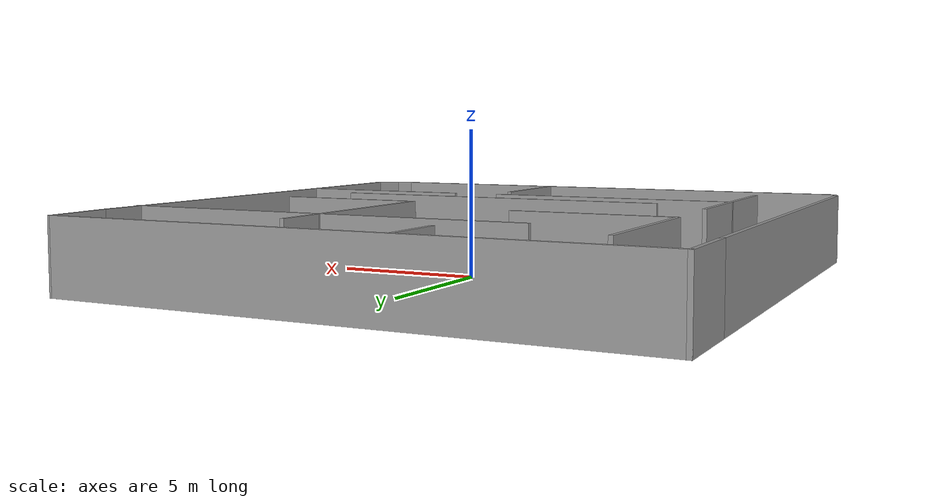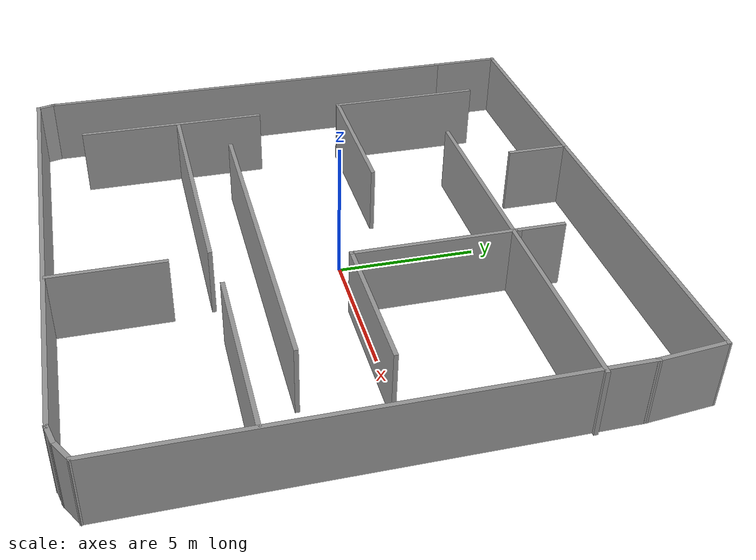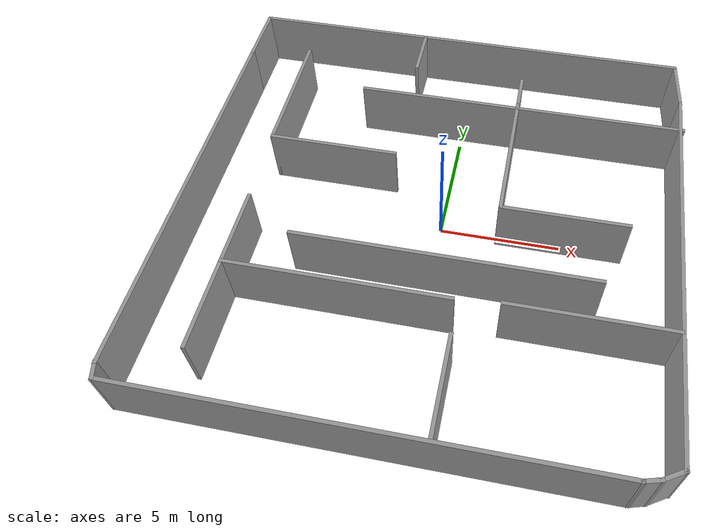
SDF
<?xml version='1.0'?>
<sdf version='1.7'>
  <model name='RightRoom'>
    <pose>-0.390822 -0.305689 0 0 -0 0</pose>
    <link name='Wall_11'>
      <collision name='Wall_11_Collision'>
        <geometry>
          <box>
            <size>2.75 0.15 2.5</size>
          </box>
        </geometry>
        <pose>0 0 1.25 0 -0 0</pose>
      </collision>
      <visual name='Wall_11_Visual'>
        <pose>0 0 1.25 0 -0 0</pose>
        <geometry>
          <box>
            <size>2.75 0.15 2.5</size>
          </box>
        </geometry>
        <material>
          <script>
            <uri>file://media/materials/scripts/gazebo.material</uri>
            <name>Gazebo/Grey</name>
          </script>
          <ambient>1 1 1 1</ambient>
        </material>
        <meta>
          <layer>0</layer>
        </meta>
      </visual>
      <pose>-9.95326 8.46986 0 0 -0 1.5708</pose>
    </link>
    <link name='Wall_12'>
      <collision name='Wall_12_Collision'>
        <geometry>
          <box>
            <size>19.75 0.15 2.5</size>
          </box>
        </geometry>
        <pose>0 0 1.25 0 -0 0</pose>
      </collision>
      <visual name='Wall_12_Visual'>
        <pose>0 0 1.25 0 -0 0</pose>
        <geometry>
          <box>
            <size>19.75 0.15 2.5</size>
          </box>
        </geometry>
        <material>
          <script>
            <uri>file://media/materials/scripts/gazebo.material</uri>
            <name>Gazebo/Grey</name>
          </script>
          <ambient>1 1 1 1</ambient>
        </material>
        <meta>
          <layer>0</layer>
        </meta>
      </visual>
      <pose>-0.15326 9.76986 0 0 -0 0</pose>
    </link>
    <link name='Wall_13'>
      <collision name='Wall_13_Collision'>
        <geometry>
          <box>
            <size>2.50963 0.15 2.5</size>
          </box>
        </geometry>
        <pose>0 0 1.25 0 -0 0</pose>
      </collision>
      <visual name='Wall_13_Visual'>
        <pose>0 0 1.25 0 -0 0</pose>
        <geometry>
          <box>
            <size>2.50963 0.15 2.5</size>
          </box>
        </geometry>
        <material>
          <script>
            <uri>file://media/materials/scripts/gazebo.material</uri>
            <name>Gazebo/Grey</name>
          </script>
          <ambient>1 1 1 1</ambient>
        </material>
        <meta>
          <layer>0</layer>
        </meta>
      </visual>
      <pose>9.75723 8.59523 0 0 -0 -1.47701</pose>
    </link>
    <link name='Wall_15'>
      <collision name='Wall_15_Collision'>
        <geometry>
          <box>
            <size>5.75 0.15 2.5</size>
          </box>
        </geometry>
        <pose>0 0 1.25 0 -0 0</pose>
      </collision>
      <visual name='Wall_15_Visual'>
        <pose>0 0 1.25 0 -0 0</pose>
        <geometry>
          <box>
            <size>5.75 0.15 2.5</size>
          </box>
        </geometry>
        <material>
          <script>
            <uri>file://media/materials/scripts/gazebo.material</uri>
            <name>Gazebo/Grey</name>
          </script>
          <ambient>1 1 1 1</ambient>
        </material>
        <meta>
          <layer>0</layer>
        </meta>
      </visual>
      <pose>-7.32191 4.93089 0 0 -0 -1.5708</pose>
    </link>
    <link name='Wall_16'>
      <collision name='Wall_16_Collision'>
        <geometry>
          <box>
            <size>5.5 0.15 2.5</size>
          </box>
        </geometry>
        <pose>0 0 1.25 0 -0 0</pose>
      </collision>
      <visual name='Wall_16_Visual'>
        <pose>0 0 1.25 0 -0 0</pose>
        <geometry>
          <box>
            <size>5.5 0.15 2.5</size>
          </box>
        </geometry>
        <material>
          <script>
            <uri>file://media/materials/scripts/gazebo.material</uri>
            <name>Gazebo/Grey</name>
          </script>
          <ambient>1 1 1 1</ambient>
        </material>
        <meta>
          <layer>0</layer>
        </meta>
      </visual>
      <pose>-4.64691 2.13089 0 0 -0 0</pose>
    </link>
    <link name='Wall_18'>
      <collision name='Wall_18_Collision'>
        <geometry>
          <box>
            <size>7 0.15 2.5</size>
          </box>
        </geometry>
        <pose>0 0 1.25 0 -0 0</pose>
      </collision>
      <visual name='Wall_18_Visual'>
        <pose>0 0 1.25 0 -0 0</pose>
        <geometry>
          <box>
            <size>7 0.15 2.5</size>
          </box>
        </geometry>
        <material>
          <script>
            <uri>file://media/materials/scripts/gazebo.material</uri>
            <name>Gazebo/Grey</name>
          </script>
          <ambient>1 1 1 1</ambient>
        </material>
        <meta>
          <layer>0</layer>
        </meta>
      </visual>
      <pose>-7.21551 -4.63178 0 0 -0 -1.5708</pose>
    </link>
    <link name='Wall_20'>
      <collision name='Wall_20_Collision'>
        <geometry>
          <box>
            <size>9 0.15 2.5</size>
          </box>
        </geometry>
        <pose>0 0 1.25 0 -0 0</pose>
      </collision>
      <visual name='Wall_20_Visual'>
        <pose>0 0 1.25 0 -0 0</pose>
        <geometry>
          <box>
            <size>9 0.15 2.5</size>
          </box>
        </geometry>
        <material>
          <script>
            <uri>file://media/materials/scripts/gazebo.material</uri>
            <name>Gazebo/Grey</name>
          </script>
          <ambient>1 1 1 1</ambient>
        </material>
        <meta>
          <layer>0</layer>
        </meta>
      </visual>
      <pose>-2.79051 -4.3988 0 0 -0 0</pose>
    </link>
    <link name='Wall_22'>
      <collision name='Wall_22_Collision'>
        <geometry>
          <box>
            <size>4 0.15 2.5</size>
          </box>
        </geometry>
        <pose>0 0 1.25 0 -0 0</pose>
      </collision>
      <visual name='Wall_22_Visual'>
        <pose>0 0 1.25 0 -0 0</pose>
        <geometry>
          <box>
            <size>4 0.15 2.5</size>
          </box>
        </geometry>
        <material>
          <script>
            <uri>file://media/materials/scripts/gazebo.material</uri>
            <name>Gazebo/Grey</name>
          </script>
          <ambient>1 1 1 1</ambient>
        </material>
        <meta>
          <layer>0</layer>
        </meta>
      </visual>
      <pose>1.82856 -7.76021 0 0 -0 -1.5708</pose>
    </link>
    <link name='Wall_24'>
      <collision name='Wall_24_Collision'>
        <geometry>
          <box>
            <size>6.5 0.15 2.5</size>
          </box>
        </geometry>
        <pose>0 0 1.25 0 -0 0</pose>
      </collision>
      <visual name='Wall_24_Visual'>
        <pose>0 0 1.25 0 -0 0</pose>
        <geometry>
          <box>
            <size>6.5 0.15 2.5</size>
          </box>
        </geometry>
        <material>
          <script>
            <uri>file://media/materials/scripts/gazebo.material</uri>
            <name>Gazebo/Grey</name>
          </script>
          <ambient>1 1 1 1</ambient>
        </material>
        <meta>
          <layer>0</layer>
        </meta>
      </visual>
      <pose>6.63362 -4.2392 0 0 -0 3.14159</pose>
    </link>
    <link name='Wall_26'>
      <collision name='Wall_26_Collision'>
        <geometry>
          <box>
            <size>12.25 0.15 2.5</size>
          </box>
        </geometry>
        <pose>0 0 1.25 0 -0 0</pose>
      </collision>
      <visual name='Wall_26_Visual'>
        <pose>0 0 1.25 0 -0 0</pose>
        <geometry>
          <box>
            <size>12.25 0.15 2.5</size>
          </box>
        </geometry>
        <material>
          <script>
            <uri>file://media/materials/scripts/gazebo.material</uri>
            <name>Gazebo/Grey</name>
          </script>
          <ambient>1 1 1 1</ambient>
        </material>
        <meta>
          <layer>0</layer>
        </meta>
      </visual>
      <pose>0.962508 -2.64319 0 0 -0 0</pose>
    </link>
    <link name='Wall_28'>
      <collision name='Wall_28_Collision'>
        <geometry>
          <box>
            <size>14.25 0.15 2.5</size>
          </box>
        </geometry>
        <pose>0 0 1.25 0 -0 0</pose>
      </collision>
      <visual name='Wall_28_Visual'>
        <pose>0 0 1.25 0 -0 0</pose>
        <geometry>
          <box>
            <size>14.25 0.15 2.5</size>
          </box>
        </geometry>
        <material>
          <script>
            <uri>file://media/materials/scripts/gazebo.material</uri>
            <name>Gazebo/Grey</name>
          </script>
          <ambient>1 1 1 1</ambient>
        </material>
        <meta>
          <layer>0</layer>
        </meta>
      </visual>
      <pose>2.92012 5.76248 0 0 -0 0</pose>
    </link>
    <link name='Wall_30'>
      <collision name='Wall_30_Collision'>
        <geometry>
          <box>
            <size>6 0.15 2.5</size>
          </box>
        </geometry>
        <pose>0 0 1.25 0 -0 0</pose>
      </collision>
      <visual name='Wall_30_Visual'>
        <pose>0 0 1.25 0 -0 0</pose>
        <geometry>
          <box>
            <size>6 0.15 2.5</size>
          </box>
        </geometry>
        <material>
          <script>
            <uri>file://media/materials/scripts/gazebo.material</uri>
            <name>Gazebo/Grey</name>
          </script>
          <ambient>1 1 1 1</ambient>
        </material>
        <meta>
          <layer>0</layer>
        </meta>
      </visual>
      <pose>2.78617 3.05028 0 0 -0 -1.5708</pose>
    </link>
    <link name='Wall_31'>
      <collision name='Wall_31_Collision'>
        <geometry>
          <box>
            <size>5.25 0.15 2.5</size>
          </box>
        </geometry>
        <pose>0 0 1.25 0 -0 0</pose>
      </collision>
      <visual name='Wall_31_Visual'>
        <pose>0 0 1.25 0 -0 0</pose>
        <geometry>
          <box>
            <size>5.25 0.15 2.5</size>
          </box>
        </geometry>
        <material>
          <script>
            <uri>file://media/materials/scripts/gazebo.material</uri>
            <name>Gazebo/Grey</name>
          </script>
          <ambient>1 1 1 1</ambient>
        </material>
        <meta>
          <layer>0</layer>
        </meta>
      </visual>
      <pose>5.33617 0.125278 0 0 -0 0</pose>
    </link>
    <link name='Wall_33'>
      <collision name='Wall_33_Collision'>
        <geometry>
          <box>
            <size>1.75 0.15 2.5</size>
          </box>
        </geometry>
        <pose>0 0 1.25 0 -0 0</pose>
      </collision>
      <visual name='Wall_33_Visual'>
        <pose>0 0 1.25 0 -0 0</pose>
        <geometry>
          <box>
            <size>1.75 0.15 2.5</size>
          </box>
        </geometry>
        <material>
          <script>
            <uri>file://media/materials/scripts/gazebo.material</uri>
            <name>Gazebo/Grey</name>
          </script>
          <ambient>1 1 1 1</ambient>
        </material>
        <meta>
          <layer>0</layer>
        </meta>
      </visual>
      <pose>2.78617 6.77528 0 0 -0 1.5708</pose>
    </link>
    <link name='Wall_35'>
      <collision name='Wall_35_Collision'>
        <geometry>
          <box>
            <size>2.25 0.15 2.5</size>
          </box>
        </geometry>
        <pose>0 0 1.25 0 -0 0</pose>
      </collision>
      <visual name='Wall_35_Visual'>
        <pose>0 0 1.25 0 -0 0</pose>
        <geometry>
          <box>
            <size>2.25 0.15 2.5</size>
          </box>
        </geometry>
        <material>
          <script>
            <uri>file://media/materials/scripts/gazebo.material</uri>
            <name>Gazebo/Grey</name>
          </script>
          <ambient>1 1 1 1</ambient>
        </material>
        <meta>
          <layer>0</layer>
        </meta>
      </visual>
      <pose>-2.10827 8.64931 0 0 -0 -1.5708</pose>
    </link>
    <link name='Wall_4'>
      <collision name='Wall_4_Collision'>
        <geometry>
          <box>
            <size>16.5 0.15 2.5</size>
          </box>
        </geometry>
        <pose>0 0 1.25 0 -0 0</pose>
      </collision>
      <visual name='Wall_4_Visual'>
        <pose>0 0 1.25 0 -0 0</pose>
        <geometry>
          <box>
            <size>16.5 0.15 2.5</size>
          </box>
        </geometry>
        <material>
          <script>
            <uri>file://media/materials/scripts/gazebo.material</uri>
            <name>Gazebo/Grey</name>
          </script>
          <ambient>1 1 1 1</ambient>
        </material>
        <meta>
          <layer>0</layer>
        </meta>
      </visual>
      <pose>-9.95326 -1.00514 0 0 -0 -1.5708</pose>
    </link>
    <link name='Wall_5'>
      <collision name='Wall_5_Collision'>
        <geometry>
          <box>
            <size>0.75 0.15 2.5</size>
          </box>
        </geometry>
        <pose>0 0 1.25 0 -0 0</pose>
      </collision>
      <visual name='Wall_5_Visual'>
        <pose>0 0 1.25 0 -0 0</pose>
        <geometry>
          <box>
            <size>0.75 0.15 2.5</size>
          </box>
        </geometry>
        <material>
          <script>
            <uri>file://media/materials/scripts/gazebo.material</uri>
            <name>Gazebo/Grey</name>
          </script>
          <ambient>1 1 1 1</ambient>
        </material>
        <meta>
          <layer>0</layer>
        </meta>
      </visual>
      <pose>-9.87561 -9.46992 0 0 -0 -1.309</pose>
    </link>
    <link name='Wall_6'>
      <collision name='Wall_6_Collision'>
        <geometry>
          <box>
            <size>18.5 0.15 2.5</size>
          </box>
        </geometry>
        <pose>0 0 1.25 0 -0 0</pose>
      </collision>
      <visual name='Wall_6_Visual'>
        <pose>0 0 1.25 0 -0 0</pose>
        <geometry>
          <box>
            <size>18.5 0.15 2.5</size>
          </box>
        </geometry>
        <material>
          <script>
            <uri>file://media/materials/scripts/gazebo.material</uri>
            <name>Gazebo/Grey</name>
          </script>
          <ambient>1 1 1 1</ambient>
        </material>
        <meta>
          <layer>0</layer>
        </meta>
      </visual>
      <pose>-0.622968 -9.7597 0 0 -0 0</pose>
    </link>
    <link name='Wall_7'>
      <collision name='Wall_7_Collision'>
        <geometry>
          <box>
            <size>0.75 0.15 2.5</size>
          </box>
        </geometry>
        <pose>0 0 1.25 0 -0 0</pose>
      </collision>
      <visual name='Wall_7_Visual'>
        <pose>0 0 1.25 0 -0 0</pose>
        <geometry>
          <box>
            <size>0.75 0.15 2.5</size>
          </box>
        </geometry>
        <material>
          <script>
            <uri>file://media/materials/scripts/gazebo.material</uri>
            <name>Gazebo/Grey</name>
          </script>
          <ambient>1 1 1 1</ambient>
        </material>
        <meta>
          <layer>0</layer>
        </meta>
      </visual>
      <pose>8.84181 -9.68205 0 0 -0 0.261799</pose>
    </link>
    <link name='Wall_8'>
      <collision name='Wall_8_Collision'>
        <geometry>
          <box>
            <size>1 0.15 2.5</size>
          </box>
        </geometry>
        <pose>0 0 1.25 0 -0 0</pose>
      </collision>
      <visual name='Wall_8_Visual'>
        <pose>0 0 1.25 0 -0 0</pose>
        <geometry>
          <box>
            <size>1 0.15 2.5</size>
          </box>
        </geometry>
        <material>
          <script>
            <uri>file://media/materials/scripts/gazebo.material</uri>
            <name>Gazebo/Grey</name>
          </script>
          <ambient>1 1 1 1</ambient>
        </material>
        <meta>
          <layer>0</layer>
        </meta>
      </visual>
      <pose>9.49965 -9.3919 0 0 -0 0.523599</pose>
    </link>
    <link name='Wall_9'>
      <collision name='Wall_9_Collision'>
        <geometry>
          <box>
            <size>16.75 0.15 2.5</size>
          </box>
        </geometry>
        <pose>0 0 1.25 0 -0 0</pose>
      </collision>
      <visual name='Wall_9_Visual'>
        <pose>0 0 1.25 0 -0 0</pose>
        <geometry>
          <box>
            <size>16.75 0.15 2.5</size>
          </box>
        </geometry>
        <material>
          <script>
            <uri>file://media/materials/scripts/gazebo.material</uri>
            <name>Gazebo/Grey</name>
          </script>
          <ambient>1 1 1 1</ambient>
        </material>
        <meta>
          <layer>0</layer>
        </meta>
      </visual>
      <pose>9.86771 -0.879405 0 0 -0 1.5708</pose>
    </link>
    <static>1</static>
  </model>
</sdf>
